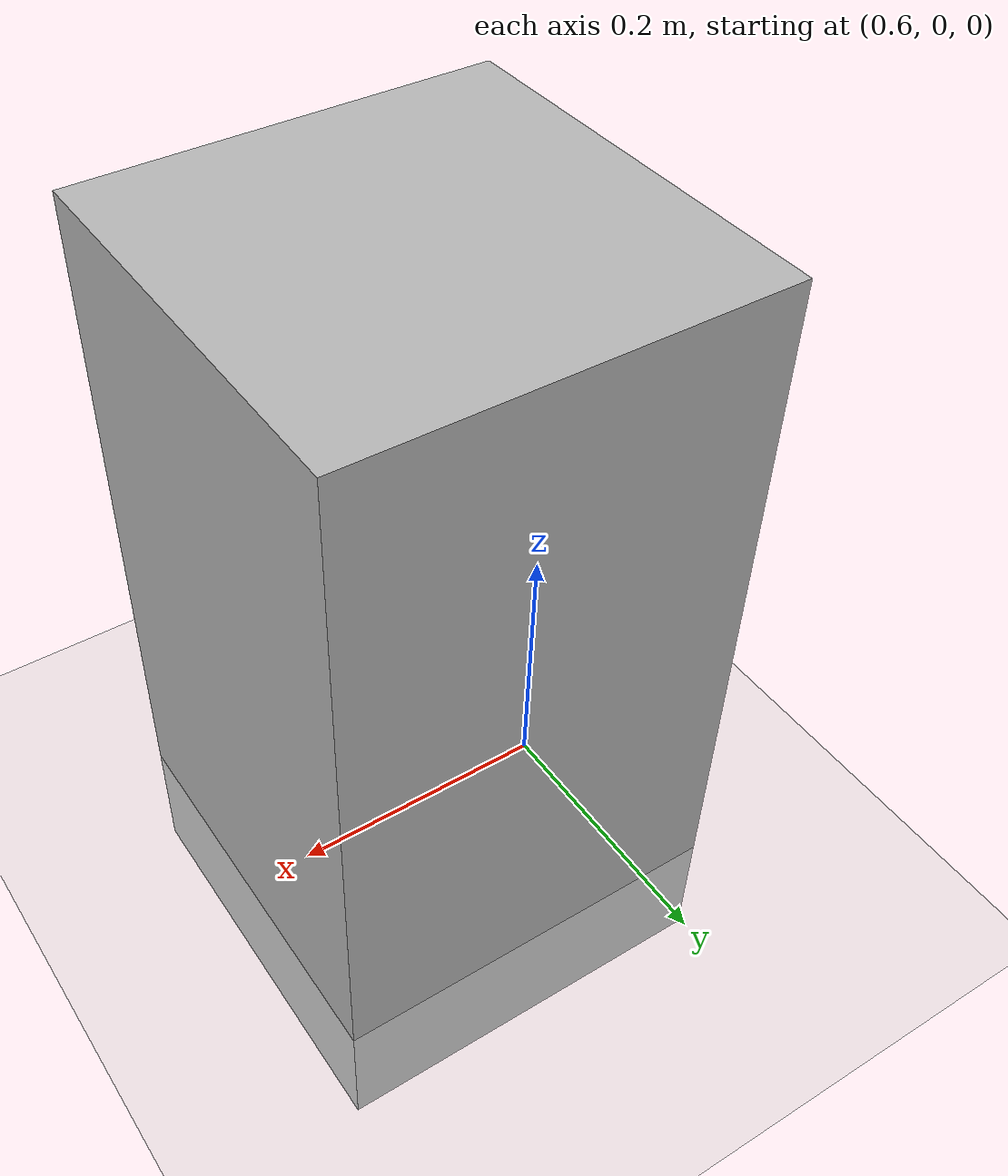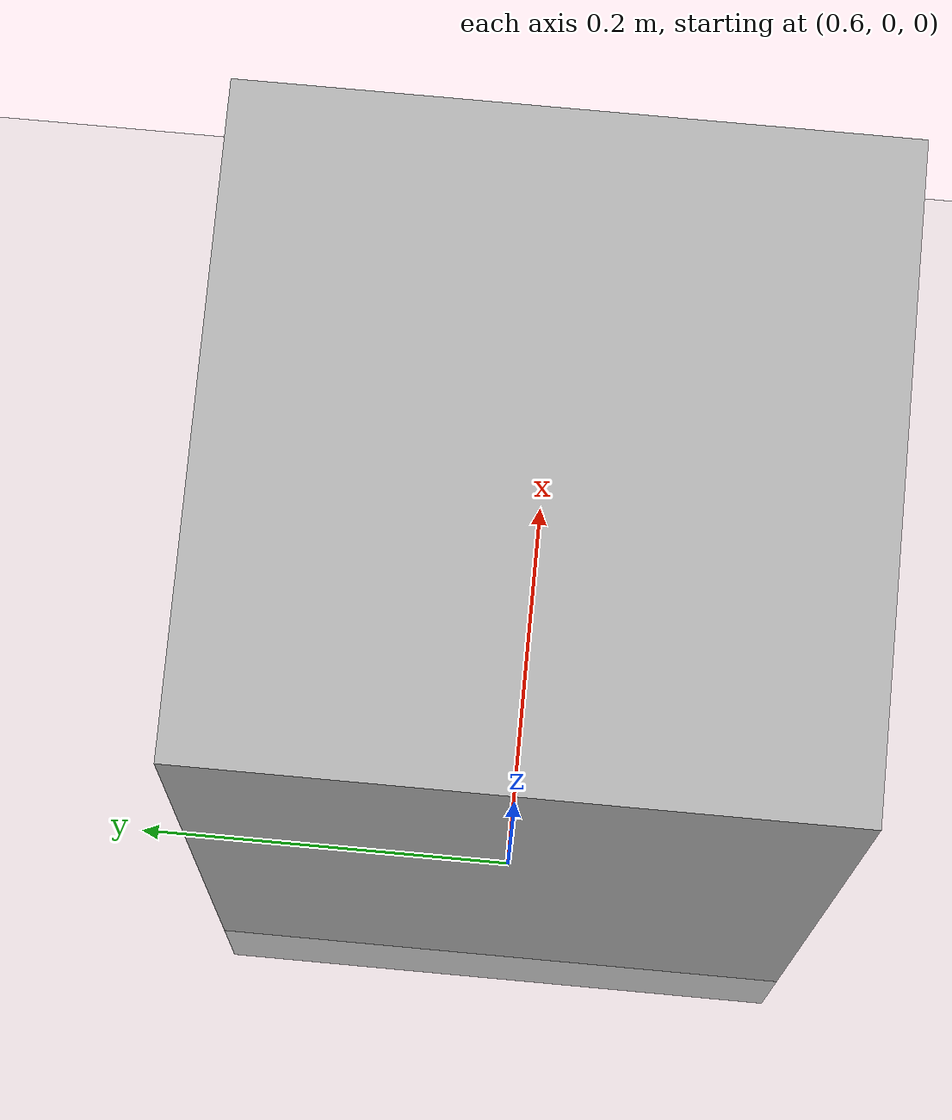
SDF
<?xml version="1.0"?>

<!-- A basic world for RL training (task 2, effort control with resting table) -->
<sdf version="1.6">
	<world name="default">

		<!-- setting ode max step size -->
		<physics type="ode">
			<ode>
        			<solver>
          				<type>quick</type>
        			</solver>
        		</ode>
			<max_step_size>0.002</max_step_size>
		</physics>

		<!--Sunlight (without physical sun model)-->
		<include>
			<uri>model://sun</uri>
		</include>

		<!-- Ground Plane -->
		<include>
			<uri>model://ground_plane</uri>
		</include>

		<!-- Table for end effector to rest on -->
		<model name="table">
			<pose>0.7 0 0.2 0 0 0</pose>
			<static>true</static>
			<link name="box">
				<intertial>
					<mass>10</mass>
				</intertial>
				<collision name="colission">
					<geometry>
						<box>
							<size>0.3 0.3 0.6</size>
						</box>
					</geometry>
				</collision>
				<visual name="visual">
					<geometry>
						<box>
							<size>0.3 0.3 0.6</size>
						</box>
					</geometry>
				</visual>
			</link>
		</model>

		<gravity>0 0 -9.8</gravity>

		<!-- A nice outdoor scene -->
		<scene>
			<sky>
				<time>12</time>
				<clouds>
					<humidity>0.1</humidity>
				</clouds>
			</sky>
		</scene>
	</world>
</sdf>
